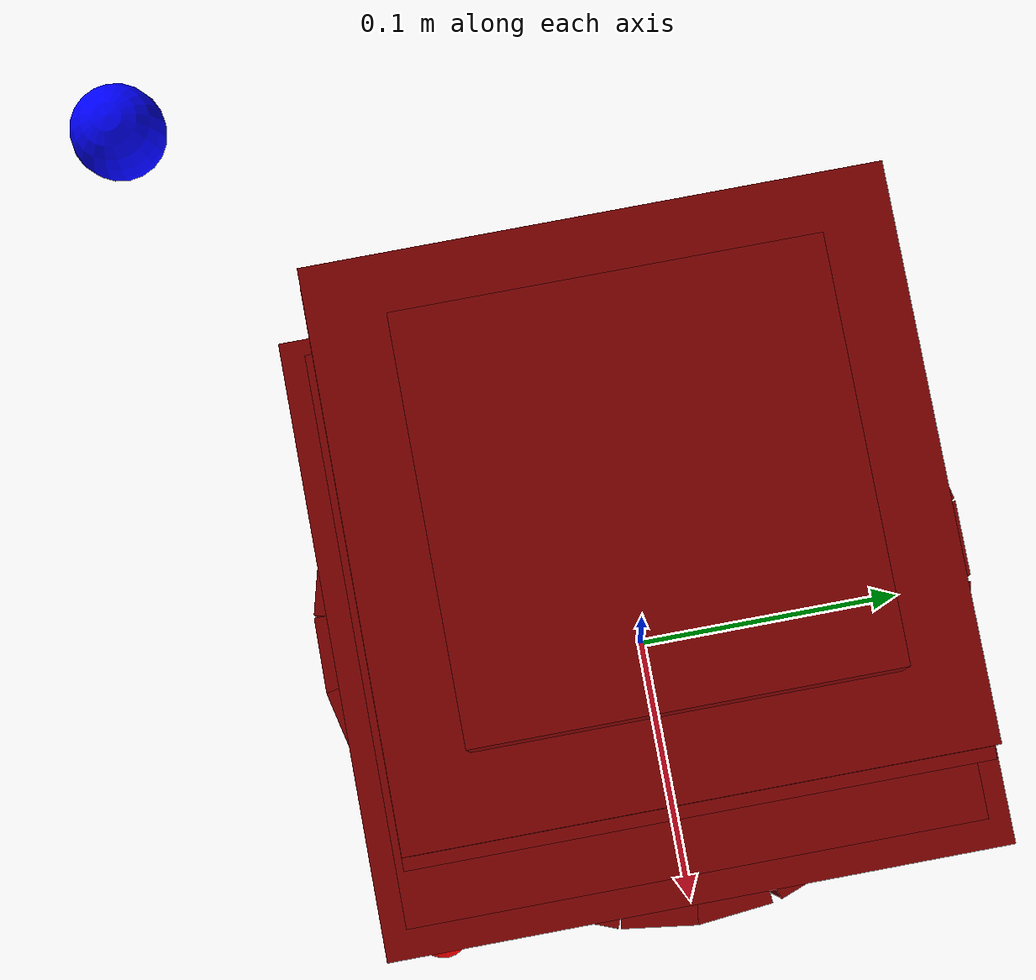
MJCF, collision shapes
<?xml version='1.0' encoding='utf-8'?>
<mujoco model="model">
    <compiler angle="radian" />
    <asset>
        <mesh file="visuals/Blender002_Body001_Clear.obj" name="Blender002_Body_Clear_vis" />
        <mesh file="visuals/Blender002_Button001.obj" name="Blender002_Button_vis" />
        <mesh file="visuals/Blender002_Lid001.obj" name="Blender002_Lid_vis" />
        <mesh file="visuals/Blender002_Blade001.obj" name="Blender002_Blade_vis" />
        <texture file="visuals/T_Blender002_BC001.png" name="T_Blender002_BC" type="2d" />
        <material name="material" rgba="1 1 1 1" texture="T_Blender002_BC" />
        <material name="material_Clear" rgba="1 1 1 0.4" texture="T_Blender002_BC" />
    </asset>
    <default>
        <default class="visual">
            <geom conaffinity="0" contype="0" group="1" type="mesh" />
        </default>
        <default class="collision">
            <geom group="0" rgba="0.5 0 0 0.5" />
        </default>
    </default>
    <worldbody>
        <body>

            <site rgba="0 0 0 1" size="0.01" pos="-0.0945408388870419 -0.09454090413055383 0" name="ext_p0" />
            <site rgba="1 0 0 1" size="0.01" pos="0.09454080016439548 -0.09454090413055383 0" name="ext_px" />
            <site rgba="0 1 0 1" size="0.01" pos="-0.0945408388870419 0.09454079452552833 0" name="ext_py" />
            <site rgba="0 0 1 1" size="0.01" pos="-0.0945408388870419 -0.09454090413055383 0.3623918890953064" name="ext_pz" />

            <body name="object">
                <geom mesh="Blender002_Body_Clear_vis" type="mesh" solimp="0.998 0.998 0.001" solref="0.001 1" density="100" friction="0.95 0.3 0.1" class="visual" material="material_Clear" />
                <geom class="collision" type="box" pos="-6.766640581190586e-10 0.08889234811067581 0.10014069080352783" size="0.011705671437084675 0.011705674231052399 0.057380761951208115" quat="1.0 0.0 0.0 0.0" />
                <geom class="collision" type="box" pos="9.509676601737738e-09 -1.0477378964424133e-09 0.010407209396362305" size="0.09058567136526108 0.09058567136526108 0.01030990481376648" quat="1.0 0.0 0.0 0.0" />
                <geom class="collision" type="box" pos="-0.02116217650473118 0.08633658289909363 0.10014069080352783" size="0.011705671437084675 0.011705671437084675 0.057380761951208115" quat="0.9927862882614136 0.0 0.0 0.11989756673574448" />
                <geom class="collision" type="box" pos="-0.04061070829629898 0.0790734738111496 0.10014069080352783" size="0.011705671437084675 0.011705671437084675 0.057380761951208115" quat="0.9719933867454529 0.0 0.0 0.23500820994377136" />
                <geom class="collision" type="box" pos="-0.0596783384680748 0.06588124483823776 0.10014069080352783" size="0.011705671437084675 0.011705668643116951 0.057380761951208115" quat="0.9330422282218933 0.0 0.0 0.3597669303417206" />
                <geom class="collision" type="box" pos="-0.0738113522529602 0.049535121768713 0.10014069080352783" size="0.011705671437084675 0.011705671437084675 0.057380761951208115" quat="0.882396936416626 0.0 0.0 0.4705057740211487" />
                <geom class="collision" type="box" pos="-0.08346841484308243 0.030575620010495186 0.10014069080352783" size="0.011705671437084675 0.011705668643116951 0.057380761951208115" quat="0.8197446465492249 0.0 0.0 0.572729229927063" />
                <geom class="collision" type="box" pos="-0.08807583898305893 0.012020367197692394 0.10014063119888306" size="0.0117056705057621 0.0117056705057621 0.057380761951208115" quat="0.7534002661705017 0.0 0.0 0.6575621962547302" />
                <geom class="collision" type="box" pos="-0.08840522170066833 -0.00929301604628563 0.10014069080352783" size="0.011705671437084675 0.011705674231052399 0.057380761951208115" quat="0.6691253781318665 0.0 0.0 0.7431495189666748" />
                <geom class="collision" type="box" pos="-0.08383873850107193 -0.029545100405812263 0.10014063119888306" size="0.011705675162374973 0.011705675162374973 0.057380761951208115" quat="0.577767550945282 0.0 0.0 0.8162013292312622" />
                <geom class="collision" type="box" pos="-0.0733460932970047 -0.05022147297859192 0.10014069080352783" size="0.011705671437084675 0.011705668643116951 0.057380761951208115" quat="0.4663851857185364 0.0 0.0 0.8845817446708679" />
                <geom class="collision" type="box" pos="-0.05906121805310249 -0.0664350762963295 0.10014069080352783" size="0.011705671437084675 0.011705671437084675 0.057380761951208115" quat="0.3554112911224365 0.0 0.0 0.9347100257873535" />
                <geom class="collision" type="box" pos="-0.041581716388463974 -0.07856719195842743 0.10014069080352783" size="0.011705671437084675 0.011705668643116951 0.057380761951208115" quat="0.2409907728433609 0.0 0.0 0.9705274105072021" />
                <geom class="collision" type="box" pos="-0.02198048122227192 -0.08613193035125732 0.10014063119888306" size="0.011705676093697548 0.011705676093697548 0.057380761951208115" quat="0.12460655719041824 0.0 0.0 0.9922062158584595" />
                <geom class="collision" type="box" pos="-0.0008435053750872612 -0.08888830989599228 0.10014069080352783" size="0.011705671437084675 0.011705671437084675 0.057380761951208115" quat="0.00474458746612072 0.0 0.0 0.9999887347221375" />
                <geom class="collision" type="box" pos="0.01979704760015011 -0.08665978163480759 0.10014069080352783" size="0.011705671437084675 0.011705671437084675 0.057380761951208115" quat="-0.11205992102622986 0.0 0.0 0.9937014579772949" />
                <geom class="collision" type="box" pos="0.04153461009263992 -0.07859210669994354 0.10014063119888306" size="0.0117056705057621 0.011705667711794376 0.057380761951208115" quat="-0.2406998723745346 0.0 0.0 0.9705995917320251" />
                <geom class="collision" type="box" pos="0.059270672500133514 -0.06624825298786163 0.10014069080352783" size="0.011705671437084675 0.011705671437084675 0.057380761951208115" quat="-0.3568864166736603 0.0 0.0 0.9341477751731873" />
                <geom class="collision" type="box" pos="0.07331597059965134 -0.05026543512940407 0.10014069080352783" size="0.01170567236840725 0.011705675162374973 0.057380761951208115" quat="-0.46612003445625305 0.0 0.0 0.8847215175628662" />
                <geom class="collision" type="box" pos="0.08268888294696808 -0.03262503072619438 0.10014069080352783" size="0.011705671437084675 0.011705671437084675 0.057380761951208115" quat="-0.5625755786895752 0.0 0.0 0.826745867729187" />
                <geom class="collision" type="box" pos="0.08807840943336487 -0.01200170535594225 0.10014069080352783" size="0.01170567236840725 0.011705669574439526 0.057380761951208115" quat="-0.6576420664787292 0.0 0.0 0.7533305883407593" />
                <geom class="collision" type="box" pos="0.08846010267734528 0.008755302056670189 0.10014069080352783" size="0.011705671437084675 0.011705674231052399 0.057380761951208115" quat="-0.7411118149757385 0.0 0.0 0.6713816523551941" />
                <geom class="collision" type="box" pos="0.08318666368722916 0.031334079802036285 0.10014069080352783" size="0.011705671437084675 0.011705674231052399 0.057380761951208115" quat="-0.8223426342010498 0.0 0.0 0.5689926147460938" />
                <geom class="collision" type="box" pos="0.0731683149933815 0.050480108708143234 0.10014069080352783" size="0.011705671437084675 0.011705674231052399 0.057380761951208115" quat="-0.8854036927223206 0.0 0.0 0.464822918176651" />
                <geom class="collision" type="box" pos="0.05907624959945679 0.06642171740531921 0.10014069080352783" size="0.011705671437084675 0.011705671437084675 0.057380761951208115" quat="-0.9346697926521301 0.0 0.0 0.3555169701576233" />
                <geom class="collision" type="box" pos="0.04208139702677727 0.07830070704221725 0.10014069080352783" size="0.011705671437084675 0.011705668643116951 0.057380761951208115" quat="-0.9697548747062683 0.0 0.0 0.24408100545406342" />
                <geom class="collision" type="box" pos="0.02226857654750347 0.08605784177780151 0.10014069080352783" size="0.011705671437084675 0.011705674231052399 0.057380761951208115" quat="-0.9919963479042053 0.0 0.0 0.12626652419567108" />
            </body>
        </body>
        <body name="Blender002_Lid">
            <joint name="Blender002_Lid_joint" type="free" />
            <geom mesh="Blender002_Lid_vis" type="mesh" solimp="0.998 0.998 0.001" solref="0.001 1" density="100" friction="0.95 0.3 0.1" class="visual" material="material" />
            <geom class="collision" type="box" pos="2.7976057026535273e-09 -2.0081643015146255e-09 0.327328622341156" size="0.06520938873291016 0.06520939618349075 0.014685967937111855" quat="1.0 0.0 0.0 0.0" />
            <geom class="collision" type="box" pos="7.021299097687006e-10 -1.7316779121756554e-09 0.2539272904396057" size="0.06824344396591187 0.06824344396591187 0.06286591291427612" quat="1.0 0.0 0.0 0.0" />
            <geom class="collision" type="box" pos="-4.562025424093008e-09 1.3606040738523006e-09 0.1677490919828415" size="0.09425770491361618 0.09425770491361618 0.008181261830031872" quat="1.0 0.0 0.0 0.0" />
            <geom class="collision" type="box" pos="2.7466739993542433e-09 -1.2150849215686321e-09 0.18357673287391663" size="0.08504236489534378 0.08504236489534378 0.008861768059432507" quat="1.0 0.0 0.0 0.0" />
            <body name="Blender002_Blade">
                <joint axis="0 0 -1" pos="-9.65022190939635e-05 -1.4816410839557648e-05 0.1651422083377838" limited="false" name="Blender002_Blade_joint" range="0 360" type="hinge" damping="2" frictionloss="2" armature=".01" />
                <geom mesh="Blender002_Blade_vis" type="mesh" solimp="0.998 0.998 0.001" solref="0.001 1" density="100" friction="0.95 0.3 0.1" class="visual" material="material" />
                <geom class="collision" type="box" pos="-0.038767699152231216 -0.006443536374717951 0.043958574533462524" size="0.027565447613596916 0.008608008734881878 0.0035246610641479492" quat="0.9884145259857178 0.0 0.0 0.15177835524082184" />
                <geom class="collision" type="box" pos="0.04078737646341324 0.006155685521662235 0.043958574533462524" size="0.027565445750951767 0.008608007803559303 0.0035246610641479492" quat="0.9938057661056519 0.0 0.0 0.11113082617521286" />
                <geom class="collision" type="box" pos="-6.184563972055912e-11 3.7834979593753815e-10 0.09635359048843384" size="0.011064767837524414 0.011064767837524414 0.07362957298755646" quat="1.0 0.0 0.0 0.0" />
            </body>
            <body name="Blender002_Button">
                <joint axis="0 0 -1" pos="-4.2571227822918445e-05 9.729448356665671e-05 0.35753825306892395" limited="true" name="Blender002_Button_joint" range="0.0 0.005" type="slide" damping="2" frictionloss="2" armature=".01" />
                <geom mesh="Blender002_Button_vis" type="mesh" solimp="0.998 0.998 0.001" solref="0.001 1" density="100" friction="0.95 0.3 0.1" class="visual" material="material" />
                <geom class="collision" type="box" pos="-4.257066757418215e-05 9.729457087814808e-05 0.35543373227119446" size="0.046279311180114746 0.046279311180114746 0.00669079227373004" quat="1.0 0.0 0.0 0.0" />
            </body>
        </body>
    </worldbody>
    <actuator>
        <motor name="Blender002_Lid_joint_actuator" joint="Blender002_Lid_joint" gear="10" />
        <motor name="Blender002_Blade_joint_actuator" joint="Blender002_Blade_joint" gear="10" />
        <motor name="Blender002_Button_joint_actuator" joint="Blender002_Button_joint" gear="10" />
    </actuator>
</mujoco>
